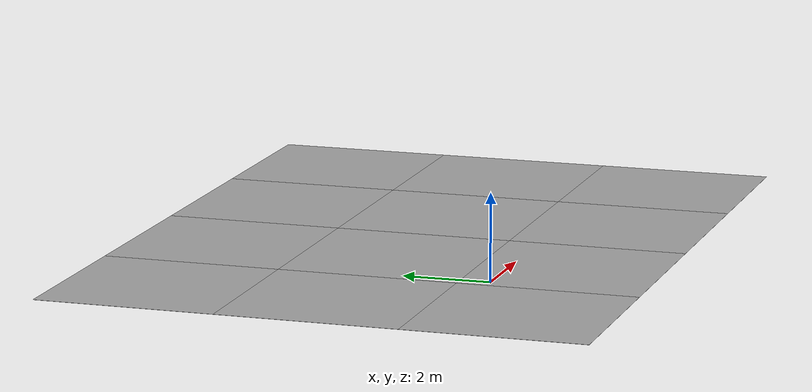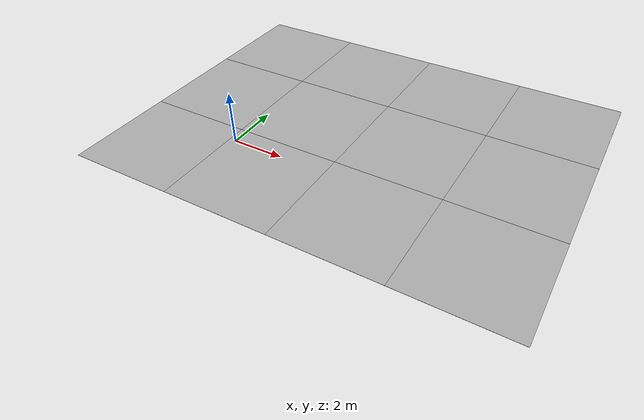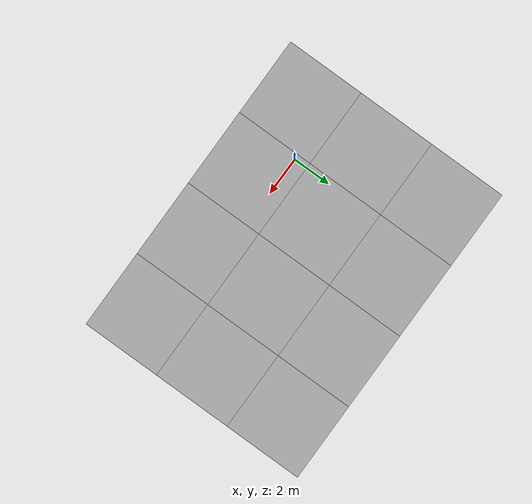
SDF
<sdf version="1.6">
 <world name="default">
  <light name="sun_light" type="directional">
   <pose>0 0 10 0 -0 0</pose>
   <diffuse>0.5 0.5 0.5 1</diffuse>
   <specular>0.1 0.1 0.1 1</specular>
   <direction>0.1 0.1 -0.9</direction>
   <attenuation>
    <range>20</range>
    <constant>0.5</constant>
    <linear>0.01</linear>
    <quadratic>0.001</quadratic>
   </attenuation>
  </light>
  <model name="Tile/0-0">
   <static>1</static>
   <link name="link">
    <collision name="collision">
     <geometry><plane><normal>0 0 1</normal><size>4.096 4.096</size></plane></geometry>
     <surface><friction><ode><mu>100</mu><mu2>50</mu2></ode></friction></surface>
    </collision>
    <visual name="visual">
     <cast_shadows>0</cast_shadows>
     <geometry><plane><normal>0 0 1</normal><size>4.096 4.096</size></plane></geometry>
     <material>
      <script>
       <uri>file://materials/scripts</uri>
       <uri>file://materials/textures</uri>
       <name>Tile/05b1aab737cd07126c7763c23174357fc26bbc388e3e2e3f934e19ce8bbfa08a</name>
      </script>
     </material>
    </visual>
   </link>
   <pose>-2.311998328377377 -1.3519999999999999 0 0 -0 0</pose>
  </model>
  <model name="Tile/0-1">
   <static>1</static>
   <link name="link">
    <collision name="collision">
     <geometry><plane><normal>0 0 1</normal><size>4.096 4.096</size></plane></geometry>
     <surface><friction><ode><mu>100</mu><mu2>50</mu2></ode></friction></surface>
    </collision>
    <visual name="visual">
     <cast_shadows>0</cast_shadows>
     <geometry><plane><normal>0 0 1</normal><size>4.096 4.096</size></plane></geometry>
     <material>
      <script>
       <uri>file://materials/scripts</uri>
       <uri>file://materials/textures</uri>
       <name>Tile/a3f4e6b7b23849ba3f334180eedae89a78eadbf1062bf5d6f8c2179576ab5d28</name>
      </script>
     </material>
    </visual>
   </link>
   <pose>-2.311998328377377 2.744 0 0 -0 0</pose>
  </model>
  <model name="Tile/0-2">
   <static>1</static>
   <link name="link">
    <collision name="collision">
     <geometry><plane><normal>0 0 1</normal><size>4.096 4.096</size></plane></geometry>
     <surface><friction><ode><mu>100</mu><mu2>50</mu2></ode></friction></surface>
    </collision>
    <visual name="visual">
     <cast_shadows>0</cast_shadows>
     <geometry><plane><normal>0 0 1</normal><size>4.096 4.096</size></plane></geometry>
     <material>
      <script>
       <uri>file://materials/scripts</uri>
       <uri>file://materials/textures</uri>
       <name>Tile/31d23578d42ca8084348a8dcdc3640b7027c7a07df7f885014a0ca905b3e20c0</name>
      </script>
     </material>
    </visual>
   </link>
   <pose>-2.311998328377377 6.84 0 0 -0 0</pose>
  </model>
  <model name="Tile/1-0">
   <static>1</static>
   <link name="link">
    <collision name="collision">
     <geometry><plane><normal>0 0 1</normal><size>4.096 4.096</size></plane></geometry>
     <surface><friction><ode><mu>100</mu><mu2>50</mu2></ode></friction></surface>
    </collision>
    <visual name="visual">
     <cast_shadows>0</cast_shadows>
     <geometry><plane><normal>0 0 1</normal><size>4.096 4.096</size></plane></geometry>
     <material>
      <script>
       <uri>file://materials/scripts</uri>
       <uri>file://materials/textures</uri>
       <name>Tile/62a498cf89422c2358ef277f1087aeefc38c931ebb4d59767aeaf45fc49937cb</name>
      </script>
     </material>
    </visual>
   </link>
   <pose>1.7840016716226232 -1.3519999999999999 0 0 -0 0</pose>
  </model>
  <model name="Tile/1-1">
   <static>1</static>
   <link name="link">
    <collision name="collision">
     <geometry><plane><normal>0 0 1</normal><size>4.096 4.096</size></plane></geometry>
     <surface><friction><ode><mu>100</mu><mu2>50</mu2></ode></friction></surface>
    </collision>
    <visual name="visual">
     <cast_shadows>0</cast_shadows>
     <geometry><plane><normal>0 0 1</normal><size>4.096 4.096</size></plane></geometry>
     <material>
      <script>
       <uri>file://materials/scripts</uri>
       <uri>file://materials/textures</uri>
       <name>Tile/8afd32a05d1dc8522e8f199813f6f824dce2ac7b9dc6e783a511e3e52bca3caf</name>
      </script>
     </material>
    </visual>
   </link>
   <pose>1.7840016716226232 2.744 0 0 -0 0</pose>
  </model>
  <model name="Tile/1-2">
   <static>1</static>
   <link name="link">
    <collision name="collision">
     <geometry><plane><normal>0 0 1</normal><size>4.096 4.096</size></plane></geometry>
     <surface><friction><ode><mu>100</mu><mu2>50</mu2></ode></friction></surface>
    </collision>
    <visual name="visual">
     <cast_shadows>0</cast_shadows>
     <geometry><plane><normal>0 0 1</normal><size>4.096 4.096</size></plane></geometry>
     <material>
      <script>
       <uri>file://materials/scripts</uri>
       <uri>file://materials/textures</uri>
       <name>Tile/199d807f6a15bfef1205f60035f4c35edbcdd158ca471b6d179f96a5c536b3bc</name>
      </script>
     </material>
    </visual>
   </link>
   <pose>1.7840016716226232 6.84 0 0 -0 0</pose>
  </model>
  <model name="Tile/2-0">
   <static>1</static>
   <link name="link">
    <collision name="collision">
     <geometry><plane><normal>0 0 1</normal><size>4.096 4.096</size></plane></geometry>
     <surface><friction><ode><mu>100</mu><mu2>50</mu2></ode></friction></surface>
    </collision>
    <visual name="visual">
     <cast_shadows>0</cast_shadows>
     <geometry><plane><normal>0 0 1</normal><size>4.096 4.096</size></plane></geometry>
     <material>
      <script>
       <uri>file://materials/scripts</uri>
       <uri>file://materials/textures</uri>
       <name>Tile/e533eeb7e1aaacf3451dfbe3d4c4f34d833b50f4ef5983eed1cfec9ef649bf79</name>
      </script>
     </material>
    </visual>
   </link>
   <pose>5.880001671622623 -1.3519999999999999 0 0 -0 0</pose>
  </model>
  <model name="Tile/2-1">
   <static>1</static>
   <link name="link">
    <collision name="collision">
     <geometry><plane><normal>0 0 1</normal><size>4.096 4.096</size></plane></geometry>
     <surface><friction><ode><mu>100</mu><mu2>50</mu2></ode></friction></surface>
    </collision>
    <visual name="visual">
     <cast_shadows>0</cast_shadows>
     <geometry><plane><normal>0 0 1</normal><size>4.096 4.096</size></plane></geometry>
     <material>
      <script>
       <uri>file://materials/scripts</uri>
       <uri>file://materials/textures</uri>
       <name>Tile/a85a702b7b1eefc2260b172c7b3f4ad69dc51c9f65fa55183262ff5eba13c93d</name>
      </script>
     </material>
    </visual>
   </link>
   <pose>5.880001671622623 2.744 0 0 -0 0</pose>
  </model>
  <model name="Tile/2-2">
   <static>1</static>
   <link name="link">
    <collision name="collision">
     <geometry><plane><normal>0 0 1</normal><size>4.096 4.096</size></plane></geometry>
     <surface><friction><ode><mu>100</mu><mu2>50</mu2></ode></friction></surface>
    </collision>
    <visual name="visual">
     <cast_shadows>0</cast_shadows>
     <geometry><plane><normal>0 0 1</normal><size>4.096 4.096</size></plane></geometry>
     <material>
      <script>
       <uri>file://materials/scripts</uri>
       <uri>file://materials/textures</uri>
       <name>Tile/2951b86ce9ef382432749fcb391603d2d007935bbbfd62c2520e66a07dacf7bb</name>
      </script>
     </material>
    </visual>
   </link>
   <pose>5.880001671622623 6.84 0 0 -0 0</pose>
  </model>
  <model name="Tile/3-0">
   <static>1</static>
   <link name="link">
    <collision name="collision">
     <geometry><plane><normal>0 0 1</normal><size>4.096 4.096</size></plane></geometry>
     <surface><friction><ode><mu>100</mu><mu2>50</mu2></ode></friction></surface>
    </collision>
    <visual name="visual">
     <cast_shadows>0</cast_shadows>
     <geometry><plane><normal>0 0 1</normal><size>4.096 4.096</size></plane></geometry>
     <material>
      <script>
       <uri>file://materials/scripts</uri>
       <uri>file://materials/textures</uri>
       <name>Tile/5eab350b8220ac9944dbdfa4ac3288c7c17e24c3bf5df0dfcf6173d64dae00a1</name>
      </script>
     </material>
    </visual>
   </link>
   <pose>9.976001671622623 -1.3519999999999999 0 0 -0 0</pose>
  </model>
  <model name="Tile/3-1">
   <static>1</static>
   <link name="link">
    <collision name="collision">
     <geometry><plane><normal>0 0 1</normal><size>4.096 4.096</size></plane></geometry>
     <surface><friction><ode><mu>100</mu><mu2>50</mu2></ode></friction></surface>
    </collision>
    <visual name="visual">
     <cast_shadows>0</cast_shadows>
     <geometry><plane><normal>0 0 1</normal><size>4.096 4.096</size></plane></geometry>
     <material>
      <script>
       <uri>file://materials/scripts</uri>
       <uri>file://materials/textures</uri>
       <name>Tile/5eab350b8220ac9944dbdfa4ac3288c7c17e24c3bf5df0dfcf6173d64dae00a1</name>
      </script>
     </material>
    </visual>
   </link>
   <pose>9.976001671622623 2.744 0 0 -0 0</pose>
  </model>
  <model name="Tile/3-2">
   <static>1</static>
   <link name="link">
    <collision name="collision">
     <geometry><plane><normal>0 0 1</normal><size>4.096 4.096</size></plane></geometry>
     <surface><friction><ode><mu>100</mu><mu2>50</mu2></ode></friction></surface>
    </collision>
    <visual name="visual">
     <cast_shadows>0</cast_shadows>
     <geometry><plane><normal>0 0 1</normal><size>4.096 4.096</size></plane></geometry>
     <material>
      <script>
       <uri>file://materials/scripts</uri>
       <uri>file://materials/textures</uri>
       <name>Tile/5eab350b8220ac9944dbdfa4ac3288c7c17e24c3bf5df0dfcf6173d64dae00a1</name>
      </script>
     </material>
    </visual>
   </link>
   <pose>9.976001671622623 6.84 0 0 -0 0</pose>
  </model>
 </world>
</sdf>
